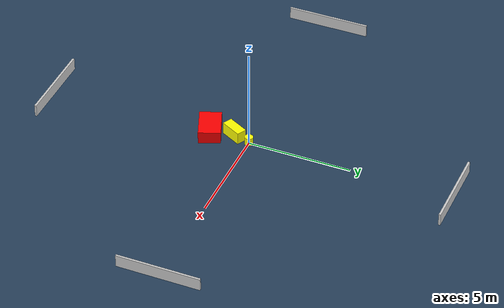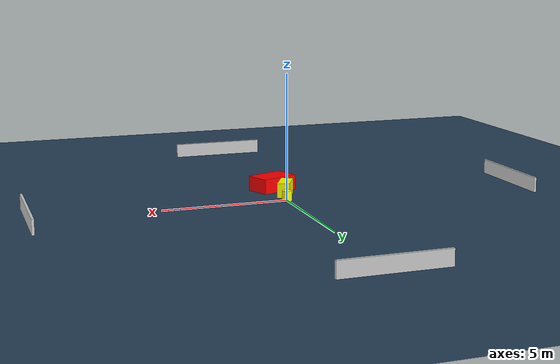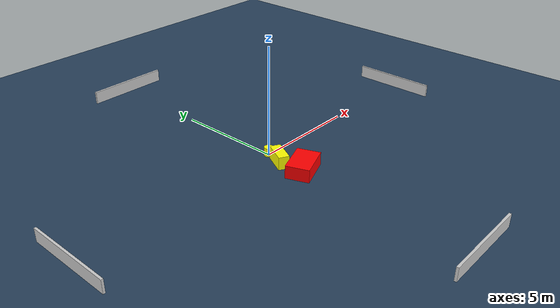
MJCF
<?xml version="1.0" ?>
<mujoco model="generated_environment">
  <option timestep="0.01" integrator="RK4" cone="elliptic"/>
  <default>
    <geom density="1"/>
  </default>
  <asset>
    <texture builtin="gradient" height="3072" name="skybox" rgb1="0.3 0.5 0.7" rgb2="0 0 0" type="skybox" width="512"/>
    <texture builtin="checker" height="300" name="groundplane" rgb1="0.2 0.3 0.4" rgb2="0.1 0.2 0.3" type="2d" width="300"/>
    <material name="groundplane" reflectance="0.2" texrepeat="5 5" texture="groundplane"/>
  </asset>
  <worldbody>
    <light dir="0 0 -1" directional="true" pos="0 0 1.5"/>
    <geom condim="3" friction="0.5 0.005 0.001" material="groundplane" name="floor" pos="0 0 0" size="0 0 0.05" type="plane"/>
    <body name="walls">
      <geom name="wall_1" condim="4" pos="-10.0 0.0 0.3" rgba="0.800000011920929 0.800000011920929 0.800000011920929 1.0" size="0.05 2.0 0.3" type="box"/>
      <geom name="wall_2" condim="4" pos="10.0 0.0 0.3" rgba="0.800000011920929 0.800000011920929 0.800000011920929 1.0" size="0.05 2.0 0.3" type="box"/>
      <geom name="wall_3" condim="4" pos="0.0 -10.0 0.3" rgba="0.800000011920929 0.800000011920929 0.800000011920929 1.0" size="2.0 0.05 0.3" type="box"/>
      <geom name="wall_4" condim="4" pos="0.0 10.0 0.3" rgba="0.800000011920929 0.800000011920929 0.800000011920929 1.0" size="2.0 0.05 0.3" type="box"/>
    </body>
    <body name="robot">
      <joint name="joint_x" type="slide" pos="0 0 0" axis="1 0 0"/>
      <joint name="joint_y" type="slide" pos="0 0 0" axis="0 1 0"/>
      <geom name="robot" type="cylinder" pos="0.0 0.0 0.2" size="0.2 0.2 0.0" mass="5.0" friction="1.0 0.005 0.0001" condim="4" rgba="1.0 1.0 0.0 1.0"/>
    </body>
    <body name="obstacle_1_movable">
      <geom name="obstacle_1_movable" condim="4" pos="-0.2175831592372526 -0.8172055494614923 0.3" euler="0 0 62.17512334384143" friction="0.0 0.005 0.001" rgba="1.0 1.0 0.0 1.0" size="0.5339160834470091 0.2421419145587584 0.3" type="box" mass="0.1"/>
      <joint type="free"/>
    </body>
    <body name="obstacle_2_static">
      <geom name="obstacle_2_static" condim="4" pos="-0.04954407677979965 -1.9807025124137725 0.3" euler="0 0 111.24720386522856" friction="0.0 0.005 0.001" rgba="1.0 0.0 0.0 1.0" size="0.5268075834385145 0.7893919116639132 0.3" type="box"/>
    </body>
  </worldbody>
  <actuator>
    <motor name="actuator_x" joint="joint_x" gear="1" ctrlrange="-1 1"/>
    <motor name="actuator_y" joint="joint_y" gear="1" ctrlrange="-1 1"/>
  </actuator>
</mujoco>
